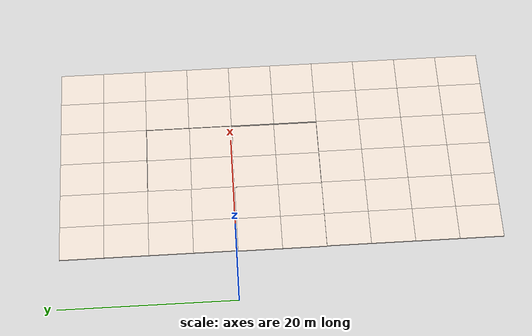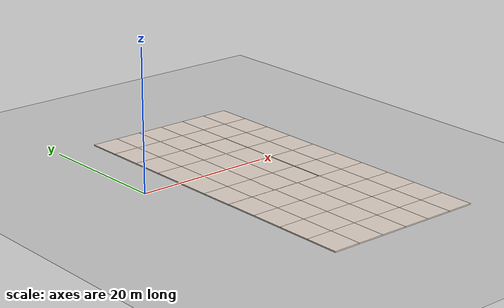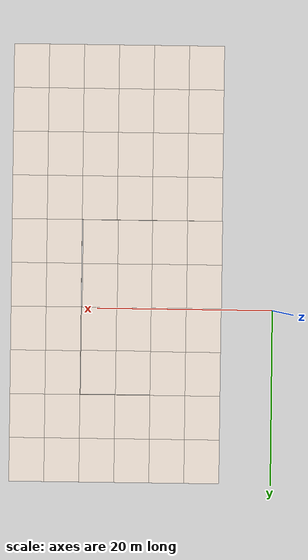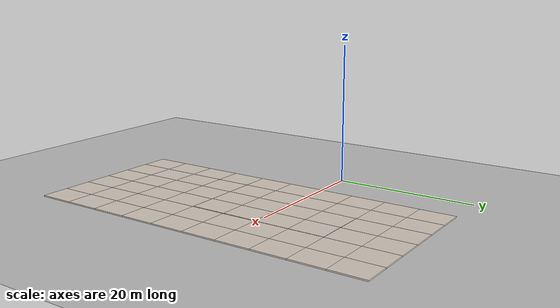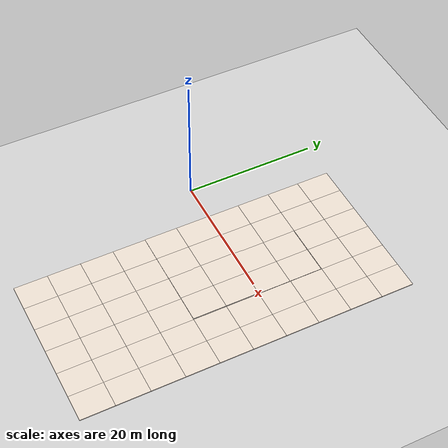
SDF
<sdf version="1.10">
 <world name="agri_world">
  <model name="ground_plane">
   <static>true</static>
   <link name="link">
    <collision name="collision">
     <geometry><plane><normal>0 0 1</normal><size>100 100</size></plane></geometry>
     <surface><friction><ode><mu>100</mu><mu2>50</mu2></ode></friction></surface>
    </collision>
    <visual name="visual">
     <cast_shadows>false</cast_shadows>
     <geometry><plane><normal>0 0 1</normal><size>100 100</size></plane></geometry>
     <material>
      <script><uri>file://media/materials/scripts/gazebo.material</uri><name>Gazebo/Grey</name></script>
     </material>
    </visual>
    <inertial>
     <mass>1</mass>
     <inertia><ixx>1</ixx><ixy>0</ixy><ixz>0</ixz><iyy>1</iyy><iyz>0</iyz><izz>1</izz></inertia>
    </inertial>
   </link>
  </model>
  <model name="mud_box_3clone">
   <static>true</static>
   <link name="link">
    <collision name="collision"><geometry><box><size>8 10 0.20000000000000001</size></box></geometry></collision>
    <visual name="visual_1">
     <pose>-2 2.5 0 0 0 0</pose>
     <cast_shadows>false</cast_shadows>
     <geometry><box><size>4 5 0.20000000000000001</size></box></geometry>
     <material>
      <ambient>0.899999976 0.850000024 0.800000012 1</ambient>
      <diffuse>0.899999976 0.850000024 0.800000012 1</diffuse>
      <specular>0.100000001 0.100000001 0.100000001 1</specular>
      <emissive>0 0 0 1</emissive>
      <pbr><metal><albedo_map>file://mud_box/materials/textures/mud_soft_leaves.png</albedo_map></metal></pbr>
     </material>
    </visual>
    <visual name="visual_2">
     <pose>2 2.5 0 0 0 0</pose>
     <cast_shadows>false</cast_shadows>
     <geometry><box><size>4 5 0.20000000000000001</size></box></geometry>
     <material>
      <ambient>0.899999976 0.850000024 0.800000012 1</ambient>
      <diffuse>0.899999976 0.850000024 0.800000012 1</diffuse>
      <specular>0.100000001 0.100000001 0.100000001 1</specular>
      <emissive>0 0 0 1</emissive>
      <pbr><metal><albedo_map>file://mud_box/materials/textures/mud_soft_leaves.png</albedo_map></metal></pbr>
     </material>
    </visual>
    <visual name="visual_3">
     <pose>2 -2.5 0 0 0 0</pose>
     <cast_shadows>false</cast_shadows>
     <geometry><box><size>4 5 0.20000000000000001</size></box></geometry>
     <material>
      <ambient>0.899999976 0.850000024 0.800000012 1</ambient>
      <diffuse>0.899999976 0.850000024 0.800000012 1</diffuse>
      <specular>0.100000001 0.100000001 0.100000001 1</specular>
      <emissive>0 0 0 1</emissive>
      <pbr><metal><albedo_map>file://mud_box/materials/textures/mud_soft_leaves.png</albedo_map></metal></pbr>
     </material>
    </visual>
    <visual name="visual_4">
     <pose>-2 -2.5 0 0 0 0</pose>
     <cast_shadows>false</cast_shadows>
     <geometry><box><size>4 5 0.20000000000000001</size></box></geometry>
     <material>
      <ambient>0.899999976 0.850000024 0.800000012 1</ambient>
      <diffuse>0.899999976 0.850000024 0.800000012 1</diffuse>
      <specular>0.100000001 0.100000001 0.100000001 1</specular>
      <emissive>0 0 0 1</emissive>
      <pbr><metal><albedo_map>file://mud_box/materials/textures/mud_soft_leaves.png</albedo_map></metal></pbr>
     </material>
    </visual>
    <inertial>
     <mass>1</mass>
     <inertia><ixx>1</ixx><ixy>0</ixy><ixz>0</ixz><iyy>1</iyy><iyz>0</iyz><izz>1</izz></inertia>
    </inertial>
   </link>
   <pose>9.90 4.85 0 0 0 0</pose>
  </model>
  <model name="mud_box_0_clone">
   <static>true</static>
   <link name="link">
    <collision name="collision"><geometry><box><size>8 10 0.20000000000000001</size></box></geometry></collision>
    <visual name="visual_1">
     <pose>-2 2.5 0 0 0 0</pose>
     <cast_shadows>false</cast_shadows>
     <geometry><box><size>4 5 0.20000000000000001</size></box></geometry>
     <material>
      <ambient>0.899999976 0.850000024 0.800000012 1</ambient>
      <diffuse>0.899999976 0.850000024 0.800000012 1</diffuse>
      <specular>0.100000001 0.100000001 0.100000001 1</specular>
      <emissive>0 0 0 1</emissive>
      <pbr><metal><albedo_map>file://mud_box/materials/textures/mud_soft_leaves.png</albedo_map></metal></pbr>
     </material>
    </visual>
    <visual name="visual_2">
     <pose>2 2.5 0 0 0 0</pose>
     <cast_shadows>false</cast_shadows>
     <geometry><box><size>4 5 0.20000000000000001</size></box></geometry>
     <material>
      <ambient>0.899999976 0.850000024 0.800000012 1</ambient>
      <diffuse>0.899999976 0.850000024 0.800000012 1</diffuse>
      <specular>0.100000001 0.100000001 0.100000001 1</specular>
      <emissive>0 0 0 1</emissive>
      <pbr><metal><albedo_map>file://mud_box/materials/textures/mud_soft_leaves.png</albedo_map></metal></pbr>
     </material>
    </visual>
    <visual name="visual_3">
     <pose>2 -2.5 0 0 0 0</pose>
     <cast_shadows>false</cast_shadows>
     <geometry><box><size>4 5 0.20000000000000001</size></box></geometry>
     <material>
      <ambient>0.899999976 0.850000024 0.800000012 1</ambient>
      <diffuse>0.899999976 0.850000024 0.800000012 1</diffuse>
      <specular>0.100000001 0.100000001 0.100000001 1</specular>
      <emissive>0 0 0 1</emissive>
      <pbr><metal><albedo_map>file://mud_box/materials/textures/mud_soft_leaves.png</albedo_map></metal></pbr>
     </material>
    </visual>
    <visual name="visual_4">
     <pose>-2 -2.5 0 0 0 0</pose>
     <cast_shadows>false</cast_shadows>
     <geometry><box><size>4 5 0.20000000000000001</size></box></geometry>
     <material>
      <ambient>0.899999976 0.850000024 0.800000012 1</ambient>
      <diffuse>0.899999976 0.850000024 0.800000012 1</diffuse>
      <specular>0.100000001 0.100000001 0.100000001 1</specular>
      <emissive>0 0 0 1</emissive>
      <pbr><metal><albedo_map>file://mud_box/materials/textures/mud_soft_leaves.png</albedo_map></metal></pbr>
     </material>
    </visual>
    <inertial>
     <mass>1</mass>
     <inertia><ixx>1</ixx><ixy>0</ixy><ixz>0</ixz><iyy>1</iyy><iyz>0</iyz><izz>1</izz></inertia>
    </inertial>
   </link>
   <pose>9.8575700000000008 -5.1421599999999996 0 0 0 0</pose>
  </model>
  <model name="mud_box_0_clone_clone">
   <static>true</static>
   <link name="link">
    <collision name="collision"><geometry><box><size>8 10 0.20000000000000001</size></box></geometry></collision>
    <visual name="visual_1">
     <pose>-2 2.5 0 0 0 0</pose>
     <cast_shadows>false</cast_shadows>
     <geometry><box><size>4 5 0.20000000000000001</size></box></geometry>
     <material>
      <ambient>0.899999976 0.850000024 0.800000012 1</ambient>
      <diffuse>0.899999976 0.850000024 0.800000012 1</diffuse>
      <specular>0.100000001 0.100000001 0.100000001 1</specular>
      <emissive>0 0 0 1</emissive>
      <pbr><metal><albedo_map>file://mud_box/materials/textures/mud_soft_leaves.png</albedo_map></metal></pbr>
     </material>
    </visual>
    <visual name="visual_2">
     <pose>2 2.5 0 0 0 0</pose>
     <cast_shadows>false</cast_shadows>
     <geometry><box><size>4 5 0.20000000000000001</size></box></geometry>
     <material>
      <ambient>0.899999976 0.850000024 0.800000012 1</ambient>
      <diffuse>0.899999976 0.850000024 0.800000012 1</diffuse>
      <specular>0.100000001 0.100000001 0.100000001 1</specular>
      <emissive>0 0 0 1</emissive>
      <pbr><metal><albedo_map>file://mud_box/materials/textures/mud_soft_leaves.png</albedo_map></metal></pbr>
     </material>
    </visual>
    <visual name="visual_3">
     <pose>2 -2.5 0 0 0 0</pose>
     <cast_shadows>false</cast_shadows>
     <geometry><box><size>4 5 0.20000000000000001</size></box></geometry>
     <material>
      <ambient>0.899999976 0.850000024 0.800000012 1</ambient>
      <diffuse>0.899999976 0.850000024 0.800000012 1</diffuse>
      <specular>0.100000001 0.100000001 0.100000001 1</specular>
      <emissive>0 0 0 1</emissive>
      <pbr><metal><albedo_map>file://mud_box/materials/textures/mud_soft_leaves.png</albedo_map></metal></pbr>
     </material>
    </visual>
    <visual name="visual_4">
     <pose>-2 -2.5 0 0 0 0</pose>
     <cast_shadows>false</cast_shadows>
     <geometry><box><size>4 5 0.20000000000000001</size></box></geometry>
     <material>
      <ambient>0.899999976 0.850000024 0.800000012 1</ambient>
      <diffuse>0.899999976 0.850000024 0.800000012 1</diffuse>
      <specular>0.100000001 0.100000001 0.100000001 1</specular>
      <emissive>0 0 0 1</emissive>
      <pbr><metal><albedo_map>file://mud_box/materials/textures/mud_soft_leaves.png</albedo_map></metal></pbr>
     </material>
    </visual>
    <inertial>
     <mass>1</mass>
     <inertia><ixx>1</ixx><ixy>0</ixy><ixz>0</ixz><iyy>1</iyy><iyz>0</iyz><izz>1</izz></inertia>
    </inertial>
   </link>
   <pose>17.766100000000002 -5.1208400000000003 0 0 0 0</pose>
  </model>
  <model name="mud_box_0_clone_clone_0">
   <static>true</static>
   <link name="link">
    <collision name="collision"><geometry><box><size>8 10 0.20000000000000001</size></box></geometry></collision>
    <visual name="visual_1">
     <pose>-2 2.5 0 0 0 0</pose>
     <cast_shadows>false</cast_shadows>
     <geometry><box><size>4 5 0.20000000000000001</size></box></geometry>
     <material>
      <ambient>0.899999976 0.850000024 0.800000012 1</ambient>
      <diffuse>0.899999976 0.850000024 0.800000012 1</diffuse>
      <specular>0.100000001 0.100000001 0.100000001 1</specular>
      <emissive>0 0 0 1</emissive>
      <pbr><metal><albedo_map>file://mud_box/materials/textures/mud_soft_leaves.png</albedo_map></metal></pbr>
     </material>
    </visual>
    <visual name="visual_2">
     <pose>2 2.5 0 0 0 0</pose>
     <cast_shadows>false</cast_shadows>
     <geometry><box><size>4 5 0.20000000000000001</size></box></geometry>
     <material>
      <ambient>0.899999976 0.850000024 0.800000012 1</ambient>
      <diffuse>0.899999976 0.850000024 0.800000012 1</diffuse>
      <specular>0.100000001 0.100000001 0.100000001 1</specular>
      <emissive>0 0 0 1</emissive>
      <pbr><metal><albedo_map>file://mud_box/materials/textures/mud_soft_leaves.png</albedo_map></metal></pbr>
     </material>
    </visual>
    <visual name="visual_3">
     <pose>2 -2.5 0 0 0 0</pose>
     <cast_shadows>false</cast_shadows>
     <geometry><box><size>4 5 0.20000000000000001</size></box></geometry>
     <material>
      <ambient>0.899999976 0.850000024 0.800000012 1</ambient>
      <diffuse>0.899999976 0.850000024 0.800000012 1</diffuse>
      <specular>0.100000001 0.100000001 0.100000001 1</specular>
      <emissive>0 0 0 1</emissive>
      <pbr><metal><albedo_map>file://mud_box/materials/textures/mud_soft_leaves.png</albedo_map></metal></pbr>
     </material>
    </visual>
    <visual name="visual_4">
     <pose>-2 -2.5 0 0 0 0</pose>
     <cast_shadows>false</cast_shadows>
     <geometry><box><size>4 5 0.20000000000000001</size></box></geometry>
     <material>
      <ambient>0.899999976 0.850000024 0.800000012 1</ambient>
      <diffuse>0.899999976 0.850000024 0.800000012 1</diffuse>
      <specular>0.100000001 0.100000001 0.100000001 1</specular>
      <emissive>0 0 0 1</emissive>
      <pbr><metal><albedo_map>file://mud_box/materials/textures/mud_soft_leaves.png</albedo_map></metal></pbr>
     </material>
    </visual>
    <inertial>
     <mass>1</mass>
     <inertia><ixx>1</ixx><ixy>0</ixy><ixz>0</ixz><iyy>1</iyy><iyz>0</iyz><izz>1</izz></inertia>
    </inertial>
   </link>
   <pose>17.8432 4.7954600000000003 0 0 0 0</pose>
  </model>
  <model name="mud_box_6">
   <static>true</static>
   <link name="link">
    <collision name="collision"><geometry><box><size>8 10 0.20000000000000001</size></box></geometry></collision>
    <visual name="visual_1">
     <pose>-2 2.5 0 0 0 0</pose>
     <cast_shadows>false</cast_shadows>
     <geometry><box><size>4 5 0.20000000000000001</size></box></geometry>
     <material>
      <ambient>0.899999976 0.850000024 0.800000012 1</ambient>
      <diffuse>0.899999976 0.850000024 0.800000012 1</diffuse>
      <specular>0.100000001 0.100000001 0.100000001 1</specular>
      <emissive>0 0 0 1</emissive>
      <pbr><metal><albedo_map>file://mud_box/materials/textures/mud_soft_leaves.png</albedo_map></metal></pbr>
     </material>
    </visual>
    <visual name="visual_2">
     <pose>2 2.5 0 0 0 0</pose>
     <cast_shadows>false</cast_shadows>
     <geometry><box><size>4 5 0.20000000000000001</size></box></geometry>
     <material>
      <ambient>0.899999976 0.850000024 0.800000012 1</ambient>
      <diffuse>0.899999976 0.850000024 0.800000012 1</diffuse>
      <specular>0.100000001 0.100000001 0.100000001 1</specular>
      <emissive>0 0 0 1</emissive>
      <pbr><metal><albedo_map>file://mud_box/materials/textures/mud_soft_leaves.png</albedo_map></metal></pbr>
     </material>
    </visual>
    <visual name="visual_3">
     <pose>2 -2.5 0 0 0 0</pose>
     <cast_shadows>false</cast_shadows>
     <geometry><box><size>4 5 0.20000000000000001</size></box></geometry>
     <material>
      <ambient>0.899999976 0.850000024 0.800000012 1</ambient>
      <diffuse>0.899999976 0.850000024 0.800000012 1</diffuse>
      <specular>0.100000001 0.100000001 0.100000001 1</specular>
      <emissive>0 0 0 1</emissive>
      <pbr><metal><albedo_map>file://mud_box/materials/textures/mud_soft_leaves.png</albedo_map></metal></pbr>
     </material>
    </visual>
    <visual name="visual_4">
     <pose>-2 -2.5 0 0 0 0</pose>
     <cast_shadows>false</cast_shadows>
     <geometry><box><size>4 5 0.20000000000000001</size></box></geometry>
     <material>
      <ambient>0.899999976 0.850000024 0.800000012 1</ambient>
      <diffuse>0.899999976 0.850000024 0.800000012 1</diffuse>
      <specular>0.100000001 0.100000001 0.100000001 1</specular>
      <emissive>0 0 0 1</emissive>
      <pbr><metal><albedo_map>file://mud_box/materials/textures/mud_soft_leaves.png</albedo_map></metal></pbr>
     </material>
    </visual>
    <inertial>
     <mass>1</mass>
     <inertia><ixx>1</ixx><ixy>0</ixy><ixz>0</ixz><iyy>1</iyy><iyz>0</iyz><izz>1</izz></inertia>
    </inertial>
   </link>
   <pose>9.9000000000000004 14.85 0 0 0 0</pose>
  </model>
  <model name="mud_box_7">
   <static>true</static>
   <link name="link">
    <collision name="collision"><geometry><box><size>8 10 0.20000000000000001</size></box></geometry></collision>
    <visual name="visual_1">
     <pose>-2 2.5 0 0 0 0</pose>
     <cast_shadows>false</cast_shadows>
     <geometry><box><size>4 5 0.20000000000000001</size></box></geometry>
     <material>
      <ambient>0.899999976 0.850000024 0.800000012 1</ambient>
      <diffuse>0.899999976 0.850000024 0.800000012 1</diffuse>
      <specular>0.100000001 0.100000001 0.100000001 1</specular>
      <emissive>0 0 0 1</emissive>
      <pbr><metal><albedo_map>file://mud_box/materials/textures/mud_soft_leaves.png</albedo_map></metal></pbr>
     </material>
    </visual>
    <visual name="visual_2">
     <pose>2 2.5 0 0 0 0</pose>
     <cast_shadows>false</cast_shadows>
     <geometry><box><size>4 5 0.20000000000000001</size></box></geometry>
     <material>
      <ambient>0.899999976 0.850000024 0.800000012 1</ambient>
      <diffuse>0.899999976 0.850000024 0.800000012 1</diffuse>
      <specular>0.100000001 0.100000001 0.100000001 1</specular>
      <emissive>0 0 0 1</emissive>
      <pbr><metal><albedo_map>file://mud_box/materials/textures/mud_soft_leaves.png</albedo_map></metal></pbr>
     </material>
    </visual>
    <visual name="visual_3">
     <pose>2 -2.5 0 0 0 0</pose>
     <cast_shadows>false</cast_shadows>
     <geometry><box><size>4 5 0.20000000000000001</size></box></geometry>
     <material>
      <ambient>0.899999976 0.850000024 0.800000012 1</ambient>
      <diffuse>0.899999976 0.850000024 0.800000012 1</diffuse>
      <specular>0.100000001 0.100000001 0.100000001 1</specular>
      <emissive>0 0 0 1</emissive>
      <pbr><metal><albedo_map>file://mud_box/materials/textures/mud_soft_leaves.png</albedo_map></metal></pbr>
     </material>
    </visual>
    <visual name="visual_4">
     <pose>-2 -2.5 0 0 0 0</pose>
     <cast_shadows>false</cast_shadows>
     <geometry><box><size>4 5 0.20000000000000001</size></box></geometry>
     <material>
      <ambient>0.899999976 0.850000024 0.800000012 1</ambient>
      <diffuse>0.899999976 0.850000024 0.800000012 1</diffuse>
      <specular>0.100000001 0.100000001 0.100000001 1</specular>
      <emissive>0 0 0 1</emissive>
      <pbr><metal><albedo_map>file://mud_box/materials/textures/mud_soft_leaves.png</albedo_map></metal></pbr>
     </material>
    </visual>
    <inertial>
     <mass>1</mass>
     <inertia><ixx>1</ixx><ixy>0</ixy><ixz>0</ixz><iyy>1</iyy><iyz>0</iyz><izz>1</izz></inertia>
    </inertial>
   </link>
   <pose>17.899999999999999 14.85 0 0 0 0</pose>
  </model>
  <model name="mud_box_0_clone_clone_1_4">
   <static>true</static>
   <link name="link">
    <collision name="collision"><geometry><box><size>8 10 0.20000000000000001</size></box></geometry></collision>
    <visual name="visual_1">
     <pose>-2 2.5 0 0 0 0</pose>
     <cast_shadows>false</cast_shadows>
     <geometry><box><size>4 5 0.20000000000000001</size></box></geometry>
     <material>
      <ambient>0.899999976 0.850000024 0.800000012 1</ambient>
      <diffuse>0.899999976 0.850000024 0.800000012 1</diffuse>
      <specular>0.100000001 0.100000001 0.100000001 1</specular>
      <emissive>0 0 0 1</emissive>
      <pbr><metal><albedo_map>file://mud_box/materials/textures/mud_soft_leaves.png</albedo_map></metal></pbr>
     </material>
    </visual>
    <visual name="visual_2">
     <pose>2 2.5 0 0 0 0</pose>
     <cast_shadows>false</cast_shadows>
     <geometry><box><size>4 5 0.20000000000000001</size></box></geometry>
     <material>
      <ambient>0.899999976 0.850000024 0.800000012 1</ambient>
      <diffuse>0.899999976 0.850000024 0.800000012 1</diffuse>
      <specular>0.100000001 0.100000001 0.100000001 1</specular>
      <emissive>0 0 0 1</emissive>
      <pbr><metal><albedo_map>file://mud_box/materials/textures/mud_soft_leaves.png</albedo_map></metal></pbr>
     </material>
    </visual>
    <visual name="visual_3">
     <pose>2 -2.5 0 0 0 0</pose>
     <cast_shadows>false</cast_shadows>
     <geometry><box><size>4 5 0.20000000000000001</size></box></geometry>
     <material>
      <ambient>0.899999976 0.850000024 0.800000012 1</ambient>
      <diffuse>0.899999976 0.850000024 0.800000012 1</diffuse>
      <specular>0.100000001 0.100000001 0.100000001 1</specular>
      <emissive>0 0 0 1</emissive>
      <pbr><metal><albedo_map>file://mud_box/materials/textures/mud_soft_leaves.png</albedo_map></metal></pbr>
     </material>
    </visual>
    <visual name="visual_4">
     <pose>-2 -2.5 0 0 0 0</pose>
     <cast_shadows>false</cast_shadows>
     <geometry><box><size>4 5 0.20000000000000001</size></box></geometry>
     <material>
      <ambient>0.899999976 0.850000024 0.800000012 1</ambient>
      <diffuse>0.899999976 0.850000024 0.800000012 1</diffuse>
      <specular>0.100000001 0.100000001 0.100000001 1</specular>
      <emissive>0 0 0 1</emissive>
      <pbr><metal><albedo_map>file://mud_box/materials/textures/mud_soft_leaves.png</albedo_map></metal></pbr>
     </material>
    </visual>
    <inertial>
     <mass>1</mass>
     <inertia><ixx>1</ixx><ixy>0</ixy><ixz>0</ixz><iyy>1</iyy><iyz>0</iyz><izz>1</izz></inertia>
    </inertial>
   </link>
   <pose>9.9000000000000004 -15.15 0 0 0 0</pose>
  </model>
  <model name="mud_box_0_clone_clone_1_5">
   <static>true</static>
   <link name="link">
    <collision name="collision"><geometry><box><size>8 10 0.20000000000000001</size></box></geometry></collision>
    <visual name="visual_1">
     <pose>-2 2.5 0 0 0 0</pose>
     <cast_shadows>false</cast_shadows>
     <geometry><box><size>4 5 0.20000000000000001</size></box></geometry>
     <material>
      <ambient>0.899999976 0.850000024 0.800000012 1</ambient>
      <diffuse>0.899999976 0.850000024 0.800000012 1</diffuse>
      <specular>0.100000001 0.100000001 0.100000001 1</specular>
      <emissive>0 0 0 1</emissive>
      <pbr><metal><albedo_map>file://mud_box/materials/textures/mud_soft_leaves.png</albedo_map></metal></pbr>
     </material>
    </visual>
    <visual name="visual_2">
     <pose>2 2.5 0 0 0 0</pose>
     <cast_shadows>false</cast_shadows>
     <geometry><box><size>4 5 0.20000000000000001</size></box></geometry>
     <material>
      <ambient>0.899999976 0.850000024 0.800000012 1</ambient>
      <diffuse>0.899999976 0.850000024 0.800000012 1</diffuse>
      <specular>0.100000001 0.100000001 0.100000001 1</specular>
      <emissive>0 0 0 1</emissive>
      <pbr><metal><albedo_map>file://mud_box/materials/textures/mud_soft_leaves.png</albedo_map></metal></pbr>
     </material>
    </visual>
    <visual name="visual_3">
     <pose>2 -2.5 0 0 0 0</pose>
     <cast_shadows>false</cast_shadows>
     <geometry><box><size>4 5 0.20000000000000001</size></box></geometry>
     <material>
      <ambient>0.899999976 0.850000024 0.800000012 1</ambient>
      <diffuse>0.899999976 0.850000024 0.800000012 1</diffuse>
      <specular>0.100000001 0.100000001 0.100000001 1</specular>
      <emissive>0 0 0 1</emissive>
      <pbr><metal><albedo_map>file://mud_box/materials/textures/mud_soft_leaves.png</albedo_map></metal></pbr>
     </material>
    </visual>
    <visual name="visual_4">
     <pose>-2 -2.5 0 0 0 0</pose>
     <cast_shadows>false</cast_shadows>
     <geometry><box><size>4 5 0.20000000000000001</size></box></geometry>
     <material>
      <ambient>0.899999976 0.850000024 0.800000012 1</ambient>
      <diffuse>0.899999976 0.850000024 0.800000012 1</diffuse>
      <specular>0.100000001 0.100000001 0.100000001 1</specular>
      <emissive>0 0 0 1</emissive>
      <pbr><metal><albedo_map>file://mud_box/materials/textures/mud_soft_leaves.png</albedo_map></metal></pbr>
     </material>
    </visual>
    <inertial>
     <mass>1</mass>
     <inertia><ixx>1</ixx><ixy>0</ixy><ixz>0</ixz><iyy>1</iyy><iyz>0</iyz><izz>1</izz></inertia>
    </inertial>
   </link>
   <pose>17.899999999999999 -15.15 0 0 0 0</pose>
  </model>
  <model name="mud_box_0_clone_clone_1_9">
   <static>true</static>
   <link name="link">
    <collision name="collision"><geometry><box><size>8 10 0.20000000000000001</size></box></geometry></collision>
    <visual name="visual_1">
     <pose>-2 2.5 0 0 0 0</pose>
     <cast_shadows>false</cast_shadows>
     <geometry><box><size>4 5 0.20000000000000001</size></box></geometry>
     <material>
      <ambient>0.899999976 0.850000024 0.800000012 1</ambient>
      <diffuse>0.899999976 0.850000024 0.800000012 1</diffuse>
      <specular>0.100000001 0.100000001 0.100000001 1</specular>
      <emissive>0 0 0 1</emissive>
      <pbr><metal><albedo_map>file://mud_box/materials/textures/mud_soft_leaves.png</albedo_map></metal></pbr>
     </material>
    </visual>
    <visual name="visual_2">
     <pose>2 2.5 0 0 0 0</pose>
     <cast_shadows>false</cast_shadows>
     <geometry><box><size>4 5 0.20000000000000001</size></box></geometry>
     <material>
      <ambient>0.899999976 0.850000024 0.800000012 1</ambient>
      <diffuse>0.899999976 0.850000024 0.800000012 1</diffuse>
      <specular>0.100000001 0.100000001 0.100000001 1</specular>
      <emissive>0 0 0 1</emissive>
      <pbr><metal><albedo_map>file://mud_box/materials/textures/mud_soft_leaves.png</albedo_map></metal></pbr>
     </material>
    </visual>
    <visual name="visual_3">
     <pose>2 -2.5 0 0 0 0</pose>
     <cast_shadows>false</cast_shadows>
     <geometry><box><size>4 5 0.20000000000000001</size></box></geometry>
     <material>
      <ambient>0.899999976 0.850000024 0.800000012 1</ambient>
      <diffuse>0.899999976 0.850000024 0.800000012 1</diffuse>
      <specular>0.100000001 0.100000001 0.100000001 1</specular>
      <emissive>0 0 0 1</emissive>
      <pbr><metal><albedo_map>file://mud_box/materials/textures/mud_soft_leaves.png</albedo_map></metal></pbr>
     </material>
    </visual>
    <visual name="visual_4">
     <pose>-2 -2.5 0 0 0 0</pose>
     <cast_shadows>false</cast_shadows>
     <geometry><box><size>4 5 0.20000000000000001</size></box></geometry>
     <material>
      <ambient>0.899999976 0.850000024 0.800000012 1</ambient>
      <diffuse>0.899999976 0.850000024 0.800000012 1</diffuse>
      <specular>0.100000001 0.100000001 0.100000001 1</specular>
      <emissive>0 0 0 1</emissive>
      <pbr><metal><albedo_map>file://mud_box/materials/textures/mud_soft_leaves.png</albedo_map></metal></pbr>
     </material>
    </visual>
    <inertial>
     <mass>1</mass>
     <inertia><ixx>1</ixx><ixy>0</ixy><ixz>0</ixz><iyy>1</iyy><iyz>0</iyz><izz>1</izz></inertia>
    </inertial>
   </link>
   <pose>17.899999618530273 -25.149999618530273 0 0 0 0</pose>
  </model>
  <model name="mud_box_0_clone_clone_1_10">
   <static>true</static>
   <link name="link">
    <collision name="collision"><geometry><box><size>8 10 0.20000000000000001</size></box></geometry></collision>
    <visual name="visual_1">
     <pose>-2 2.5 0 0 0 0</pose>
     <cast_shadows>false</cast_shadows>
     <geometry><box><size>4 5 0.20000000000000001</size></box></geometry>
     <material>
      <ambient>0.899999976 0.850000024 0.800000012 1</ambient>
      <diffuse>0.899999976 0.850000024 0.800000012 1</diffuse>
      <specular>0.100000001 0.100000001 0.100000001 1</specular>
      <emissive>0 0 0 1</emissive>
      <pbr><metal><albedo_map>file://mud_box/materials/textures/mud_soft_leaves.png</albedo_map></metal></pbr>
     </material>
    </visual>
    <visual name="visual_2">
     <pose>2 2.5 0 0 0 0</pose>
     <cast_shadows>false</cast_shadows>
     <geometry><box><size>4 5 0.20000000000000001</size></box></geometry>
     <material>
      <ambient>0.899999976 0.850000024 0.800000012 1</ambient>
      <diffuse>0.899999976 0.850000024 0.800000012 1</diffuse>
      <specular>0.100000001 0.100000001 0.100000001 1</specular>
      <emissive>0 0 0 1</emissive>
      <pbr><metal><albedo_map>file://mud_box/materials/textures/mud_soft_leaves.png</albedo_map></metal></pbr>
     </material>
    </visual>
    <visual name="visual_3">
     <pose>2 -2.5 0 0 0 0</pose>
     <cast_shadows>false</cast_shadows>
     <geometry><box><size>4 5 0.20000000000000001</size></box></geometry>
     <material>
      <ambient>0.899999976 0.850000024 0.800000012 1</ambient>
      <diffuse>0.899999976 0.850000024 0.800000012 1</diffuse>
      <specular>0.100000001 0.100000001 0.100000001 1</specular>
      <emissive>0 0 0 1</emissive>
      <pbr><metal><albedo_map>file://mud_box/materials/textures/mud_soft_leaves.png</albedo_map></metal></pbr>
     </material>
    </visual>
    <visual name="visual_4">
     <pose>-2 -2.5 0 0 0 0</pose>
     <cast_shadows>false</cast_shadows>
     <geometry><box><size>4 5 0.20000000000000001</size></box></geometry>
     <material>
      <ambient>0.899999976 0.850000024 0.800000012 1</ambient>
      <diffuse>0.899999976 0.850000024 0.800000012 1</diffuse>
      <specular>0.100000001 0.100000001 0.100000001 1</specular>
      <emissive>0 0 0 1</emissive>
      <pbr><metal><albedo_map>file://mud_box/materials/textures/mud_soft_leaves.png</albedo_map></metal></pbr>
     </material>
    </visual>
    <inertial>
     <mass>1</mass>
     <inertia><ixx>1</ixx><ixy>0</ixy><ixz>0</ixz><iyy>1</iyy><iyz>0</iyz><izz>1</izz></inertia>
    </inertial>
   </link>
   <pose>9.9000000000000004 -25.149999999999999 0 0 0 0</pose>
  </model>
  <model name="mud_box_0_clone_clone_1_9_1">
   <static>true</static>
   <link name="link">
    <collision name="collision"><geometry><box><size>8 10 0.20000000000000001</size></box></geometry></collision>
    <visual name="visual_1">
     <pose>-2 2.5 0 0 0 0</pose>
     <cast_shadows>false</cast_shadows>
     <geometry><box><size>4 5 0.20000000000000001</size></box></geometry>
     <material>
      <ambient>0.899999976 0.850000024 0.800000012 1</ambient>
      <diffuse>0.899999976 0.850000024 0.800000012 1</diffuse>
      <specular>0.100000001 0.100000001 0.100000001 1</specular>
      <emissive>0 0 0 1</emissive>
      <pbr><metal><albedo_map>file://mud_box/materials/textures/mud_soft_leaves.png</albedo_map></metal></pbr>
     </material>
    </visual>
    <visual name="visual_2">
     <pose>2 2.5 0 0 0 0</pose>
     <cast_shadows>false</cast_shadows>
     <geometry><box><size>4 5 0.20000000000000001</size></box></geometry>
     <material>
      <ambient>0.899999976 0.850000024 0.800000012 1</ambient>
      <diffuse>0.899999976 0.850000024 0.800000012 1</diffuse>
      <specular>0.100000001 0.100000001 0.100000001 1</specular>
      <emissive>0 0 0 1</emissive>
      <pbr><metal><albedo_map>file://mud_box/materials/textures/mud_soft_leaves.png</albedo_map></metal></pbr>
     </material>
    </visual>
    <visual name="visual_3">
     <pose>2 -2.5 0 0 0 0</pose>
     <cast_shadows>false</cast_shadows>
     <geometry><box><size>4 5 0.20000000000000001</size></box></geometry>
     <material>
      <ambient>0.899999976 0.850000024 0.800000012 1</ambient>
      <diffuse>0.899999976 0.850000024 0.800000012 1</diffuse>
      <specular>0.100000001 0.100000001 0.100000001 1</specular>
      <emissive>0 0 0 1</emissive>
      <pbr><metal><albedo_map>file://mud_box/materials/textures/mud_soft_leaves.png</albedo_map></metal></pbr>
     </material>
    </visual>
    <visual name="visual_4">
     <pose>-2 -2.5 0 0 0 0</pose>
     <cast_shadows>false</cast_shadows>
     <geometry><box><size>4 5 0.20000000000000001</size></box></geometry>
     <material>
      <ambient>0.899999976 0.850000024 0.800000012 1</ambient>
      <diffuse>0.899999976 0.850000024 0.800000012 1</diffuse>
      <specular>0.100000001 0.100000001 0.100000001 1</specular>
      <emissive>0 0 0 1</emissive>
      <pbr><metal><albedo_map>file://mud_box/materials/textures/mud_soft_leaves.png</albedo_map></metal></pbr>
     </material>
    </visual>
    <inertial>
     <mass>1</mass>
     <inertia><ixx>1</ixx><ixy>0</ixy><ixz>0</ixz><iyy>1</iyy><iyz>0</iyz><izz>1</izz></inertia>
    </inertial>
   </link>
   <pose>25.899999999999999 -25.149999999999999 0 0 0 0</pose>
  </model>
  <model name="mud_box_0_clone_clone_1_9_2">
   <static>true</static>
   <link name="link">
    <collision name="collision"><geometry><box><size>8 10 0.20000000000000001</size></box></geometry></collision>
    <visual name="visual_1">
     <pose>-2 2.5 0 0 0 0</pose>
     <cast_shadows>false</cast_shadows>
     <geometry><box><size>4 5 0.20000000000000001</size></box></geometry>
     <material>
      <ambient>0.899999976 0.850000024 0.800000012 1</ambient>
      <diffuse>0.899999976 0.850000024 0.800000012 1</diffuse>
      <specular>0.100000001 0.100000001 0.100000001 1</specular>
      <emissive>0 0 0 1</emissive>
      <pbr><metal><albedo_map>file://mud_box/materials/textures/mud_soft_leaves.png</albedo_map></metal></pbr>
     </material>
    </visual>
    <visual name="visual_2">
     <pose>2 2.5 0 0 0 0</pose>
     <cast_shadows>false</cast_shadows>
     <geometry><box><size>4 5 0.20000000000000001</size></box></geometry>
     <material>
      <ambient>0.899999976 0.850000024 0.800000012 1</ambient>
      <diffuse>0.899999976 0.850000024 0.800000012 1</diffuse>
      <specular>0.100000001 0.100000001 0.100000001 1</specular>
      <emissive>0 0 0 1</emissive>
      <pbr><metal><albedo_map>file://mud_box/materials/textures/mud_soft_leaves.png</albedo_map></metal></pbr>
     </material>
    </visual>
    <visual name="visual_3">
     <pose>2 -2.5 0 0 0 0</pose>
     <cast_shadows>false</cast_shadows>
     <geometry><box><size>4 5 0.20000000000000001</size></box></geometry>
     <material>
      <ambient>0.899999976 0.850000024 0.800000012 1</ambient>
      <diffuse>0.899999976 0.850000024 0.800000012 1</diffuse>
      <specular>0.100000001 0.100000001 0.100000001 1</specular>
      <emissive>0 0 0 1</emissive>
      <pbr><metal><albedo_map>file://mud_box/materials/textures/mud_soft_leaves.png</albedo_map></metal></pbr>
     </material>
    </visual>
    <visual name="visual_4">
     <pose>-2 -2.5 0 0 0 0</pose>
     <cast_shadows>false</cast_shadows>
     <geometry><box><size>4 5 0.20000000000000001</size></box></geometry>
     <material>
      <ambient>0.899999976 0.850000024 0.800000012 1</ambient>
      <diffuse>0.899999976 0.850000024 0.800000012 1</diffuse>
      <specular>0.100000001 0.100000001 0.100000001 1</specular>
      <emissive>0 0 0 1</emissive>
      <pbr><metal><albedo_map>file://mud_box/materials/textures/mud_soft_leaves.png</albedo_map></metal></pbr>
     </material>
    </visual>
    <inertial>
     <mass>1</mass>
     <inertia><ixx>1</ixx><ixy>0</ixy><ixz>0</ixz><iyy>1</iyy><iyz>0</iyz><izz>1</izz></inertia>
    </inertial>
   </link>
   <pose>25.899999999999999 -15.15 0 0 0 0</pose>
  </model>
  <model name="mud_box_0_clone_clone_1_9_3">
   <static>true</static>
   <link name="link">
    <collision name="collision"><geometry><box><size>8 10 0.20000000000000001</size></box></geometry></collision>
    <visual name="visual_1">
     <pose>-2 2.5 0 0 0 0</pose>
     <cast_shadows>false</cast_shadows>
     <geometry><box><size>4 5 0.20000000000000001</size></box></geometry>
     <material>
      <ambient>0.899999976 0.850000024 0.800000012 1</ambient>
      <diffuse>0.899999976 0.850000024 0.800000012 1</diffuse>
      <specular>0.100000001 0.100000001 0.100000001 1</specular>
      <emissive>0 0 0 1</emissive>
      <pbr><metal><albedo_map>file://mud_box/materials/textures/mud_soft_leaves.png</albedo_map></metal></pbr>
     </material>
    </visual>
    <visual name="visual_2">
     <pose>2 2.5 0 0 0 0</pose>
     <cast_shadows>false</cast_shadows>
     <geometry><box><size>4 5 0.20000000000000001</size></box></geometry>
     <material>
      <ambient>0.899999976 0.850000024 0.800000012 1</ambient>
      <diffuse>0.899999976 0.850000024 0.800000012 1</diffuse>
      <specular>0.100000001 0.100000001 0.100000001 1</specular>
      <emissive>0 0 0 1</emissive>
      <pbr><metal><albedo_map>file://mud_box/materials/textures/mud_soft_leaves.png</albedo_map></metal></pbr>
     </material>
    </visual>
    <visual name="visual_3">
     <pose>2 -2.5 0 0 0 0</pose>
     <cast_shadows>false</cast_shadows>
     <geometry><box><size>4 5 0.20000000000000001</size></box></geometry>
     <material>
      <ambient>0.899999976 0.850000024 0.800000012 1</ambient>
      <diffuse>0.899999976 0.850000024 0.800000012 1</diffuse>
      <specular>0.100000001 0.100000001 0.100000001 1</specular>
      <emissive>0 0 0 1</emissive>
      <pbr><metal><albedo_map>file://mud_box/materials/textures/mud_soft_leaves.png</albedo_map></metal></pbr>
     </material>
    </visual>
    <visual name="visual_4">
     <pose>-2 -2.5 0 0 0 0</pose>
     <cast_shadows>false</cast_shadows>
     <geometry><box><size>4 5 0.20000000000000001</size></box></geometry>
     <material>
      <ambient>0.899999976 0.850000024 0.800000012 1</ambient>
      <diffuse>0.899999976 0.850000024 0.800000012 1</diffuse>
      <specular>0.100000001 0.100000001 0.100000001 1</specular>
      <emissive>0 0 0 1</emissive>
      <pbr><metal><albedo_map>file://mud_box/materials/textures/mud_soft_leaves.png</albedo_map></metal></pbr>
     </material>
    </visual>
    <inertial>
     <mass>1</mass>
     <inertia><ixx>1</ixx><ixy>0</ixy><ixz>0</ixz><iyy>1</iyy><iyz>0</iyz><izz>1</izz></inertia>
    </inertial>
   </link>
   <pose>25.899999999999999 -5.1500000000000004 0 0 0 0</pose>
  </model>
  <model name="mud_box_0_clone_clone_1_9_4">
   <static>true</static>
   <link name="link">
    <collision name="collision"><geometry><box><size>8 10 0.20000000000000001</size></box></geometry></collision>
    <visual name="visual_1">
     <pose>-2 2.5 0 0 0 0</pose>
     <cast_shadows>false</cast_shadows>
     <geometry><box><size>4 5 0.20000000000000001</size></box></geometry>
     <material>
      <ambient>0.899999976 0.850000024 0.800000012 1</ambient>
      <diffuse>0.899999976 0.850000024 0.800000012 1</diffuse>
      <specular>0.100000001 0.100000001 0.100000001 1</specular>
      <emissive>0 0 0 1</emissive>
      <pbr><metal><albedo_map>file://mud_box/materials/textures/mud_soft_leaves.png</albedo_map></metal></pbr>
     </material>
    </visual>
    <visual name="visual_2">
     <pose>2 2.5 0 0 0 0</pose>
     <cast_shadows>false</cast_shadows>
     <geometry><box><size>4 5 0.20000000000000001</size></box></geometry>
     <material>
      <ambient>0.899999976 0.850000024 0.800000012 1</ambient>
      <diffuse>0.899999976 0.850000024 0.800000012 1</diffuse>
      <specular>0.100000001 0.100000001 0.100000001 1</specular>
      <emissive>0 0 0 1</emissive>
      <pbr><metal><albedo_map>file://mud_box/materials/textures/mud_soft_leaves.png</albedo_map></metal></pbr>
     </material>
    </visual>
    <visual name="visual_3">
     <pose>2 -2.5 0 0 0 0</pose>
     <cast_shadows>false</cast_shadows>
     <geometry><box><size>4 5 0.20000000000000001</size></box></geometry>
     <material>
      <ambient>0.899999976 0.850000024 0.800000012 1</ambient>
      <diffuse>0.899999976 0.850000024 0.800000012 1</diffuse>
      <specular>0.100000001 0.100000001 0.100000001 1</specular>
      <emissive>0 0 0 1</emissive>
      <pbr><metal><albedo_map>file://mud_box/materials/textures/mud_soft_leaves.png</albedo_map></metal></pbr>
     </material>
    </visual>
    <visual name="visual_4">
     <pose>-2 -2.5 0 0 0 0</pose>
     <cast_shadows>false</cast_shadows>
     <geometry><box><size>4 5 0.20000000000000001</size></box></geometry>
     <material>
      <ambient>0.899999976 0.850000024 0.800000012 1</ambient>
      <diffuse>0.899999976 0.850000024 0.800000012 1</diffuse>
      <specular>0.100000001 0.100000001 0.100000001 1</specular>
      <emissive>0 0 0 1</emissive>
      <pbr><metal><albedo_map>file://mud_box/materials/textures/mud_soft_leaves.png</albedo_map></metal></pbr>
     </material>
    </visual>
    <inertial>
     <mass>1</mass>
     <inertia><ixx>1</ixx><ixy>0</ixy><ixz>0</ixz><iyy>1</iyy><iyz>0</iyz><izz>1</izz></inertia>
    </inertial>
   </link>
   <pose>25.899999999999999 4.8499999999999996 0 0 0 0</pose>
  </model>
  <model name="mud_box_0_clone_clone_1_9_5">
   <static>true</static>
   <link name="link">
    <collision name="collision"><geometry><box><size>8 10 0.20000000000000001</size></box></geometry></collision>
    <visual name="visual_1">
     <pose>-2 2.5 0 0 0 0</pose>
     <cast_shadows>false</cast_shadows>
     <geometry><box><size>4 5 0.20000000000000001</size></box></geometry>
     <material>
      <ambient>0.899999976 0.850000024 0.800000012 1</ambient>
      <diffuse>0.899999976 0.850000024 0.800000012 1</diffuse>
      <specular>0.100000001 0.100000001 0.100000001 1</specular>
      <emissive>0 0 0 1</emissive>
      <pbr><metal><albedo_map>file://mud_box/materials/textures/mud_soft_leaves.png</albedo_map></metal></pbr>
     </material>
    </visual>
    <visual name="visual_2">
     <pose>2 2.5 0 0 0 0</pose>
     <cast_shadows>false</cast_shadows>
     <geometry><box><size>4 5 0.20000000000000001</size></box></geometry>
     <material>
      <ambient>0.899999976 0.850000024 0.800000012 1</ambient>
      <diffuse>0.899999976 0.850000024 0.800000012 1</diffuse>
      <specular>0.100000001 0.100000001 0.100000001 1</specular>
      <emissive>0 0 0 1</emissive>
      <pbr><metal><albedo_map>file://mud_box/materials/textures/mud_soft_leaves.png</albedo_map></metal></pbr>
     </material>
    </visual>
    <visual name="visual_3">
     <pose>2 -2.5 0 0 0 0</pose>
     <cast_shadows>false</cast_shadows>
     <geometry><box><size>4 5 0.20000000000000001</size></box></geometry>
     <material>
      <ambient>0.899999976 0.850000024 0.800000012 1</ambient>
      <diffuse>0.899999976 0.850000024 0.800000012 1</diffuse>
      <specular>0.100000001 0.100000001 0.100000001 1</specular>
      <emissive>0 0 0 1</emissive>
      <pbr><metal><albedo_map>file://mud_box/materials/textures/mud_soft_leaves.png</albedo_map></metal></pbr>
     </material>
    </visual>
    <visual name="visual_4">
     <pose>-2 -2.5 0 0 0 0</pose>
     <cast_shadows>false</cast_shadows>
     <geometry><box><size>4 5 0.20000000000000001</size></box></geometry>
     <material>
      <ambient>0.899999976 0.850000024 0.800000012 1</ambient>
      <diffuse>0.899999976 0.850000024 0.800000012 1</diffuse>
      <specular>0.100000001 0.100000001 0.100000001 1</specular>
      <emissive>0 0 0 1</emissive>
      <pbr><metal><albedo_map>file://mud_box/materials/textures/mud_soft_leaves.png</albedo_map></metal></pbr>
     </material>
    </visual>
    <inertial>
     <mass>1</mass>
     <inertia><ixx>1</ixx><ixy>0</ixy><ixz>0</ixz><iyy>1</iyy><iyz>0</iyz><izz>1</izz></inertia>
    </inertial>
   </link>
   <pose>25.899999999999999 14.85 0 0 0 0</pose>
  </model>
 </world>
</sdf>
